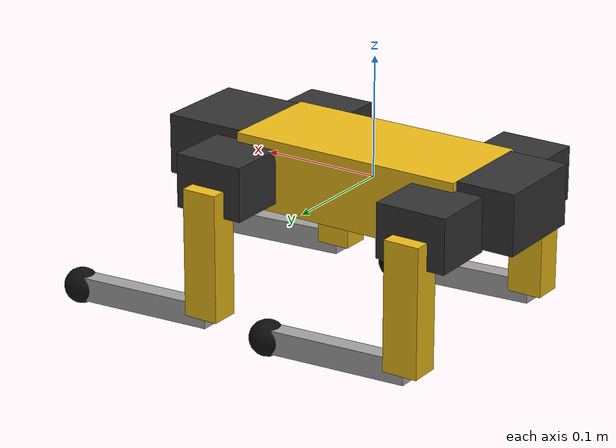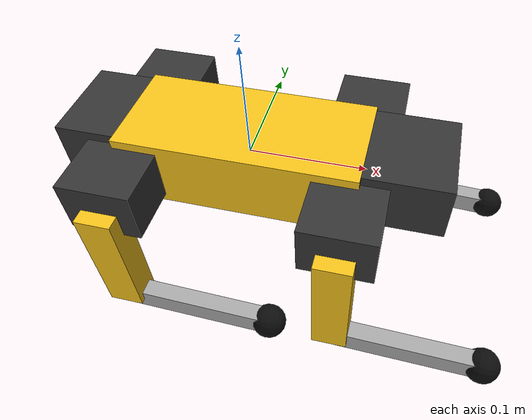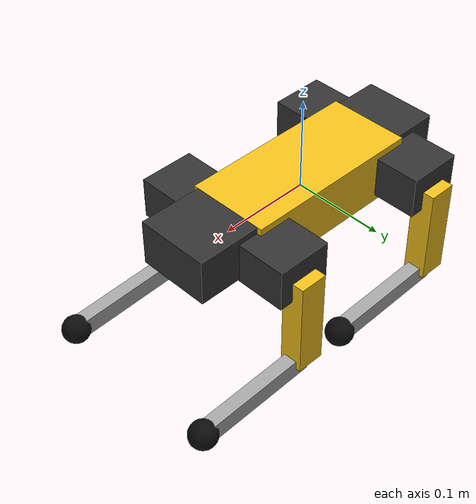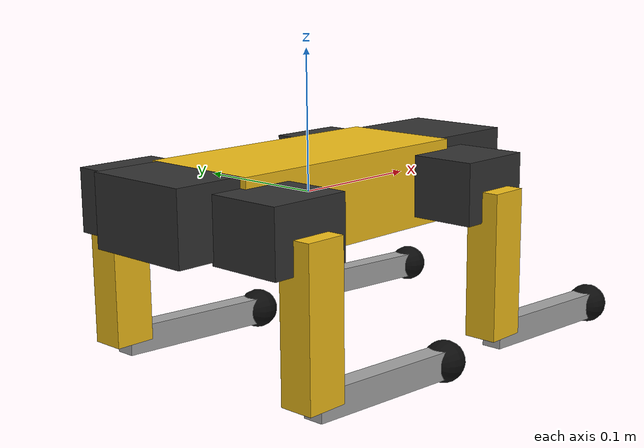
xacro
<?xml version="1.0"?>
<robot name="quadruped" xmlns:xacro="http://www.ros.org/wiki/xacro">

  <!-- ===================== GEOMETRY (metres, kg) ===================== -->

  <!-- Leg kinematic parameters — keep in sync with quadruped_kinematics -->
  <xacro:property name="hip_x"       value="0.093"/>   <!-- half the hip-to-hip length -->
  <xacro:property name="hip_y"       value="0.039"/>   <!-- half the hip-to-hip width -->
  <xacro:property name="hip_link"    value="0.055"/>   <!-- abduction link, pivot to leg plane -->
  <xacro:property name="upper_leg"   value="0.1075"/>
  <xacro:property name="lower_leg"   value="0.130"/>
  <xacro:property name="foot_radius" value="0.015"/>

  <xacro:property name="stand_height" value="0.16"/>

  <!-- Body shell (main chassis + head + tail), all one rigid link -->
  <xacro:property name="body_length" value="0.20"/>
  <xacro:property name="body_width"  value="0.09"/>
  <xacro:property name="body_height" value="0.06"/>
  <xacro:property name="head_length" value="0.07"/>
  <xacro:property name="head_width"  value="0.08"/>
  <xacro:property name="head_height" value="0.05"/>
  <xacro:property name="tail_length" value="0.05"/>
  <xacro:property name="body_mass"   value="1.30"/>

  <!-- Leg link visuals/masses. Hip and upper leg each house a servo. -->
  <xacro:property name="hip_box_x"  value="0.060"/>
  <xacro:property name="hip_box_z"  value="0.045"/>
  <xacro:property name="hip_mass"   value="0.15"/>
  <xacro:property name="upper_box_x" value="0.030"/>
  <xacro:property name="upper_box_y" value="0.025"/>
  <xacro:property name="upper_mass"  value="0.16"/>
  <xacro:property name="lower_box_x" value="0.020"/>
  <xacro:property name="lower_box_y" value="0.015"/>
  <xacro:property name="lower_mass"  value="0.05"/>
  <xacro:property name="foot_mass"   value="0.02"/>

  <!-- Joint limits (rad). Knee never passes through straight. -->
  <xacro:property name="hip_roll_min"  value="-0.75"/>
  <xacro:property name="hip_roll_max"  value="0.75"/>
  <xacro:property name="hip_pitch_min" value="-1.2"/>
  <xacro:property name="hip_pitch_max" value="1.6"/>
  <xacro:property name="knee_min"      value="-2.7"/>
  <xacro:property name="knee_max"      value="-0.35"/>

  <!-- 35 kg·cm class hobby servo: ~3.4 N·m stall, ~0.15 s / 60° -->
  <xacro:property name="joint_effort"   value="3.4"/>
  <xacro:property name="joint_velocity" value="7.0"/>
  <xacro:property name="joint_damping"  value="0.02"/>
  <xacro:property name="joint_friction" value="0.02"/>

  <!-- Stand pose derived from the geometry: foot straight below the hip
       pitch joint at reach h = stand_height - foot_radius (2-link IK). -->
  <xacro:property name="stand_reach" value="${stand_height - foot_radius}"/>
  <xacro:property name="stand_knee"
    value="${-acos((stand_reach**2 - upper_leg**2 - lower_leg**2) / (2*upper_leg*lower_leg))}"/>
  <xacro:property name="stand_hip_pitch"
    value="${acos((upper_leg**2 + stand_reach**2 - lower_leg**2) / (2*upper_leg*stand_reach))}"/>

  <xacro:property name="imu_update_rate" value="200.0"/>
  <xacro:property name="imu_gyro_noise_stddev" value="0.0004886921906"/>
  <xacro:property name="imu_gyro_bias_stddev" value="0.002908882087"/>
  <xacro:property name="imu_gyro_dynamic_bias_stddev" value="0.0000872664626"/>
  <xacro:property name="imu_gyro_dynamic_bias_correlation_time" value="300.0"/>
  <xacro:property name="imu_gyro_precision" value="0.001065264436"/>
  <xacro:property name="imu_accel_xy_noise_stddev" value="0.0063743225"/>
  <xacro:property name="imu_accel_z_noise_stddev" value="0.006864655"/>
  <xacro:property name="imu_accel_bias_stddev" value="0.06537766667"/>
  <xacro:property name="imu_accel_dynamic_bias_stddev" value="0.004903325"/>
  <xacro:property name="imu_accel_dynamic_bias_correlation_time" value="300.0"/>
  <xacro:property name="imu_accel_precision" value="0.00478840332"/>

  <!-- Colors -->
  <material name="yellow"><color rgba="0.95 0.75 0.10 1.0"/></material>
  <material name="dark_grey"><color rgba="0.20 0.20 0.20 1.0"/></material>
  <material name="light_grey"><color rgba="0.65 0.65 0.65 1.0"/></material>
  <material name="black"><color rgba="0.05 0.05 0.05 1.0"/></material>

  <!-- ===================== INERTIA MACROS ===================== -->

  <xacro:macro name="box_inertial" params="m x y z *origin">
    <inertial>
      <xacro:insert_block name="origin"/>
      <mass value="${m}"/>
      <inertia ixx="${m*(y*y+z*z)/12}" ixy="0" ixz="0"
               iyy="${m*(x*x+z*z)/12}" iyz="0"
               izz="${m*(x*x+y*y)/12}"/>
    </inertial>
  </xacro:macro>

  <xacro:macro name="sphere_inertial" params="m r">
    <inertial>
      <mass value="${m}"/>
      <inertia ixx="${2*m*r*r/5}" ixy="0" ixz="0"
               iyy="${2*m*r*r/5}" iyz="0"
               izz="${2*m*r*r/5}"/>
    </inertial>
  </xacro:macro>

  <!-- ===================== LEG MACRO ===================== -->
  <!--
    prefix : FL | FR | RL | RR
    x_sign : +1 front | -1 rear
    y_sign : +1 left  | -1 right
  -->
  <xacro:macro name="leg" params="prefix x_sign y_sign">

    <!-- HIP ROLL (abduction) — pivot on the body side -->
    <joint name="${prefix}_hip_roll_joint" type="revolute">
      <parent link="base_link"/>
      <child  link="${prefix}_hip_link"/>
      <origin xyz="${x_sign*hip_x} ${y_sign*hip_y} 0" rpy="0 0 0"/>
      <axis xyz="1 0 0"/>
      <limit lower="${hip_roll_min}" upper="${hip_roll_max}"
             effort="${joint_effort}" velocity="${joint_velocity}"/>
      <dynamics damping="${joint_damping}" friction="${joint_friction}"/>
    </joint>

    <!-- Hip link: servo block carrying the leg plane outboard -->
    <link name="${prefix}_hip_link">
      <xacro:box_inertial m="${hip_mass}" x="${hip_box_x}" y="${hip_link}" z="${hip_box_z}">
        <origin xyz="0 ${y_sign*hip_link/2} 0" rpy="0 0 0"/>
      </xacro:box_inertial>
      <visual>
        <origin xyz="0 ${y_sign*hip_link/2} 0" rpy="0 0 0"/>
        <geometry><box size="${hip_box_x} ${hip_link} ${hip_box_z}"/></geometry>
        <material name="dark_grey"/>
      </visual>
      <collision>
        <origin xyz="0 ${y_sign*hip_link/2} 0" rpy="0 0 0"/>
        <geometry><box size="${hip_box_x} ${hip_link} ${hip_box_z}"/></geometry>
      </collision>
    </link>

    <!-- HIP PITCH — in the leg plane, outboard end of the hip link -->
    <joint name="${prefix}_hip_pitch_joint" type="revolute">
      <parent link="${prefix}_hip_link"/>
      <child  link="${prefix}_upper_leg_link"/>
      <origin xyz="0 ${y_sign*hip_link} 0" rpy="0 0 0"/>
      <axis xyz="0 1 0"/>
      <limit lower="${hip_pitch_min}" upper="${hip_pitch_max}"
             effort="${joint_effort}" velocity="${joint_velocity}"/>
      <dynamics damping="${joint_damping}" friction="${joint_friction}"/>
    </joint>

    <link name="${prefix}_upper_leg_link">
      <xacro:box_inertial m="${upper_mass}" x="${upper_box_x}" y="${upper_box_y}" z="${upper_leg}">
        <origin xyz="0 0 ${-upper_leg/2}" rpy="0 0 0"/>
      </xacro:box_inertial>
      <visual>
        <origin xyz="0 0 ${-upper_leg/2}" rpy="0 0 0"/>
        <geometry><box size="${upper_box_x} ${upper_box_y} ${upper_leg}"/></geometry>
        <material name="yellow"/>
      </visual>
      <collision>
        <origin xyz="0 0 ${-upper_leg/2}" rpy="0 0 0"/>
        <geometry><box size="${upper_box_x} ${upper_box_y} ${upper_leg}"/></geometry>
      </collision>
    </link>

    <!-- KNEE -->
    <joint name="${prefix}_knee_joint" type="revolute">
      <parent link="${prefix}_upper_leg_link"/>
      <child  link="${prefix}_lower_leg_link"/>
      <origin xyz="0 0 ${-upper_leg}" rpy="0 0 0"/>
      <axis xyz="0 1 0"/>
      <limit lower="${knee_min}" upper="${knee_max}"
             effort="${joint_effort}" velocity="${joint_velocity}"/>
      <dynamics damping="${joint_damping}" friction="${joint_friction}"/>
    </joint>

    <link name="${prefix}_lower_leg_link">
      <xacro:box_inertial m="${lower_mass}" x="${lower_box_x}" y="${lower_box_y}" z="${lower_leg}">
        <origin xyz="0 0 ${-lower_leg/2}" rpy="0 0 0"/>
      </xacro:box_inertial>
      <visual>
        <origin xyz="0 0 ${-lower_leg/2}" rpy="0 0 0"/>
        <geometry><box size="${lower_box_x} ${lower_box_y} ${lower_leg}"/></geometry>
        <material name="light_grey"/>
      </visual>
      <collision>
        <origin xyz="0 0 ${-lower_leg/2}" rpy="0 0 0"/>
        <geometry><box size="${lower_box_x} ${lower_box_y} ${lower_leg}"/></geometry>
      </collision>
    </link>

    <!-- FOOT (fixed rubber ball) -->
    <joint name="${prefix}_foot_joint" type="fixed">
      <parent link="${prefix}_lower_leg_link"/>
      <child  link="${prefix}_foot_link"/>
      <origin xyz="0 0 ${-lower_leg}" rpy="0 0 0"/>
    </joint>

    <link name="${prefix}_foot_link">
      <xacro:sphere_inertial m="${foot_mass}" r="${foot_radius}"/>
      <visual>
        <geometry><sphere radius="${foot_radius}"/></geometry>
        <material name="black"/>
      </visual>
      <collision>
        <geometry><sphere radius="${foot_radius}"/></geometry>
      </collision>
    </link>

    <gazebo reference="${prefix}_foot_link">
      <mu1>1.0</mu1>
      <mu2>1.0</mu2>
      <kp>1000000.0</kp>
      <kd>100.0</kd>
    </gazebo>

    <gazebo reference="${prefix}_lower_leg_link">
      <sensor name="${prefix}_foot_contact" type="contact">
        <always_on>true</always_on>
        <update_rate>100</update_rate>
        <topic>${prefix}_foot_contact</topic>
        <contact>
          <collision>${prefix}_lower_leg_link_fixed_joint_lump__${prefix}_foot_link_collision_1</collision>
        </contact>
      </sensor>
    </gazebo>

  </xacro:macro>

  <!-- ===================== BODY ===================== -->

  <link name="base_link">
    <xacro:box_inertial m="${body_mass}" x="${body_length + head_length}" y="${body_width}" z="${body_height}">
      <origin xyz="0.01 0 0" rpy="0 0 0"/>
    </xacro:box_inertial>
    <!-- main chassis -->
    <visual>
      <geometry><box size="${body_length} ${body_width} ${body_height}"/></geometry>
      <material name="yellow"/>
    </visual>
    <collision>
      <geometry><box size="${body_length} ${body_width} ${body_height}"/></geometry>
    </collision>
    <!-- head -->
    <visual>
      <origin xyz="${body_length/2 + head_length/2} 0 ${(body_height - head_height)/2}" rpy="0 0 0"/>
      <geometry><box size="${head_length} ${head_width} ${head_height}"/></geometry>
      <material name="dark_grey"/>
    </visual>
    <collision>
      <origin xyz="${body_length/2 + head_length/2} 0 ${(body_height - head_height)/2}" rpy="0 0 0"/>
      <geometry><box size="${head_length} ${head_width} ${head_height}"/></geometry>
    </collision>
    <!-- tail -->
    <visual>
      <origin xyz="${-(body_length/2 + tail_length/2)} 0 ${(body_height - head_height)/2}" rpy="0 0 0"/>
      <geometry><box size="${tail_length} ${head_width} ${head_height}"/></geometry>
      <material name="dark_grey"/>
    </visual>
  </link>

  <!-- base_footprint: base_link projected onto the ground (REP-105) -->
  <joint name="base_footprint_joint" type="fixed">
    <parent link="base_link"/>
    <child  link="base_footprint"/>
    <origin xyz="0 0 ${-stand_height}" rpy="0 0 0"/>
  </joint>
  <link name="base_footprint"/>

  <!-- IMU at the body centre -->
  <joint name="imu_joint" type="fixed">
    <parent link="base_link"/>
    <child  link="imu_link"/>
    <origin xyz="0 0 0" rpy="0 0 0"/>
  </joint>
  <link name="imu_link"/>

  <!-- Camera on the front face of the head -->
  <joint name="camera_joint" type="fixed">
    <parent link="base_link"/>
    <child  link="camera_link"/>
    <origin xyz="${body_length/2 + head_length} 0 ${(body_height - head_height)/2 + 0.01}" rpy="0 0 0"/>
  </joint>
  <link name="camera_link">
    <visual>
      <origin xyz="-0.005 0 0" rpy="0 0 0"/>
      <geometry><box size="0.01 0.05 0.015"/></geometry>
      <material name="black"/>
    </visual>
  </link>

  <!-- Optical frame (z forward, x right, y down) -->
  <joint name="camera_optical_joint" type="fixed">
    <parent link="camera_link"/>
    <child  link="camera_link_optical"/>
    <origin xyz="0 0 0" rpy="${-pi/2} 0 ${-pi/2}"/>
  </joint>
  <link name="camera_link_optical"/>

  <!-- ===================== LEGS ===================== -->

  <xacro:leg prefix="FL" x_sign="1"  y_sign="1"/>
  <xacro:leg prefix="FR" x_sign="1"  y_sign="-1"/>
  <xacro:leg prefix="RL" x_sign="-1" y_sign="1"/>
  <xacro:leg prefix="RR" x_sign="-1" y_sign="-1"/>

  <!-- ===================== ROS2_CONTROL ===================== -->
  <ros2_control name="GazeboSimSystem" type="system">
    <hardware>
      <plugin>gz_ros2_control/GazeboSimSystem</plugin>
    </hardware>

    <xacro:macro name="leg_joints_hw" params="prefix">
      <joint name="${prefix}_hip_roll_joint">
        <command_interface name="position">
          <param name="min">${hip_roll_min}</param>
          <param name="max">${hip_roll_max}</param>
        </command_interface>
        <state_interface name="position"><param name="initial_value">0.0</param></state_interface>
        <state_interface name="velocity"/>
        <state_interface name="effort"/>
      </joint>
      <joint name="${prefix}_hip_pitch_joint">
        <command_interface name="position">
          <param name="min">${hip_pitch_min}</param>
          <param name="max">${hip_pitch_max}</param>
        </command_interface>
        <state_interface name="position"><param name="initial_value">${stand_hip_pitch}</param></state_interface>
        <state_interface name="velocity"/>
        <state_interface name="effort"/>
      </joint>
      <joint name="${prefix}_knee_joint">
        <command_interface name="position">
          <param name="min">${knee_min}</param>
          <param name="max">${knee_max}</param>
        </command_interface>
        <state_interface name="position"><param name="initial_value">${stand_knee}</param></state_interface>
        <state_interface name="velocity"/>
        <state_interface name="effort"/>
      </joint>
    </xacro:macro>

    <xacro:leg_joints_hw prefix="FL"/>
    <xacro:leg_joints_hw prefix="FR"/>
    <xacro:leg_joints_hw prefix="RL"/>
    <xacro:leg_joints_hw prefix="RR"/>
  </ros2_control>

  <!-- ===================== GAZEBO PLUGINS (gz-sim) ===================== -->

  <gazebo>
    <plugin filename="gz_ros2_control-system" name="gz_ros2_control::GazeboSimROS2ControlPlugin">
      <parameters>$(find quadruped_gazebo)/config/ros2_control.yaml</parameters>
      <ros>
        <namespace>/</namespace>
      </ros>
    </plugin>
    <plugin filename="gz-sim-pose-publisher-system" name="gz::sim::systems::PosePublisher">
      <publish_link_pose>true</publish_link_pose>
      <publish_nested_model_pose>true</publish_nested_model_pose>
      <use_pose_vector_msg>true</use_pose_vector_msg>
      <update_frequency>50</update_frequency>
    </plugin>
  </gazebo>

  <xacro:macro name="imu_axis_noise" params="stddev bias_stddev dyn_bias_stddev dyn_bias_tau precision">
    <noise type="gaussian_quantized">
      <mean>0</mean><stddev>${stddev}</stddev>
      <bias_mean>0</bias_mean><bias_stddev>${bias_stddev}</bias_stddev>
      <dynamic_bias_stddev>${dyn_bias_stddev}</dynamic_bias_stddev>
      <dynamic_bias_correlation_time>${dyn_bias_tau}</dynamic_bias_correlation_time>
      <precision>${precision}</precision>
    </noise>
  </xacro:macro>
  <xacro:macro name="imu_gyro_noise">
    <xacro:imu_axis_noise stddev="${imu_gyro_noise_stddev}" bias_stddev="${imu_gyro_bias_stddev}"
      dyn_bias_stddev="${imu_gyro_dynamic_bias_stddev}" dyn_bias_tau="${imu_gyro_dynamic_bias_correlation_time}"
      precision="${imu_gyro_precision}"/>
  </xacro:macro>
  <xacro:macro name="imu_accel_noise" params="stddev">
    <xacro:imu_axis_noise stddev="${stddev}" bias_stddev="${imu_accel_bias_stddev}"
      dyn_bias_stddev="${imu_accel_dynamic_bias_stddev}" dyn_bias_tau="${imu_accel_dynamic_bias_correlation_time}"
      precision="${imu_accel_precision}"/>
  </xacro:macro>

  <gazebo reference="imu_link">
    <sensor name="imu_sensor" type="imu">
      <always_on>true</always_on>
      <update_rate>${imu_update_rate}</update_rate>
      <topic>imu/data</topic>
      <gz_frame_id>imu_link</gz_frame_id>
      <pose>0 0 0 0 0 0</pose>
      <imu>
        <angular_velocity>
          <x><xacro:imu_gyro_noise/></x>
          <y><xacro:imu_gyro_noise/></y>
          <z><xacro:imu_gyro_noise/></z>
        </angular_velocity>
        <linear_acceleration>
          <x><xacro:imu_accel_noise stddev="${imu_accel_xy_noise_stddev}"/></x>
          <y><xacro:imu_accel_noise stddev="${imu_accel_xy_noise_stddev}"/></y>
          <z><xacro:imu_accel_noise stddev="${imu_accel_z_noise_stddev}"/></z>
        </linear_acceleration>
      </imu>
    </sensor>
  </gazebo>

  <gazebo reference="camera_link">
    <sensor name="front_camera" type="camera">
      <always_on>true</always_on>
      <update_rate>30</update_rate>
      <topic>front_camera/image_raw</topic>
      <gz_frame_id>camera_link_optical</gz_frame_id>
      <pose>0 0 0 0 0 0</pose>
      <camera>
        <horizontal_fov>1.3962634</horizontal_fov>
        <image>
          <width>640</width>
          <height>480</height>
          <format>RGB_INT8</format>
        </image>
        <clip>
          <near>0.02</near>
          <far>300</far>
        </clip>
      </camera>
    </sensor>
    <sensor name="depth_camera" type="depth_camera">
      <always_on>true</always_on>
      <update_rate>10</update_rate>
      <topic>depth_camera/depth_image</topic>
      <gz_frame_id>camera_link</gz_frame_id>
      <pose>0 0 0 0 0 0</pose>
      <camera>
        <!-- FOV and clip planes match front_camera so the two views are
             identical up to resolution. -->
        <horizontal_fov>1.3962634</horizontal_fov>
        <image>
          <width>160</width>
          <height>120</height>
          <format>R_FLOAT32</format>
        </image>
        <clip>
          <near>0.02</near>
          <far>300</far>
        </clip>
      </camera>
    </sensor>
  </gazebo>

</robot>
